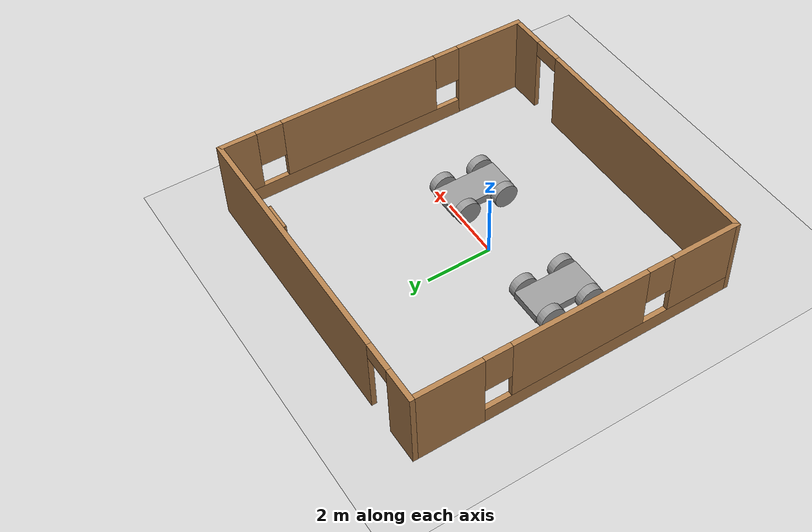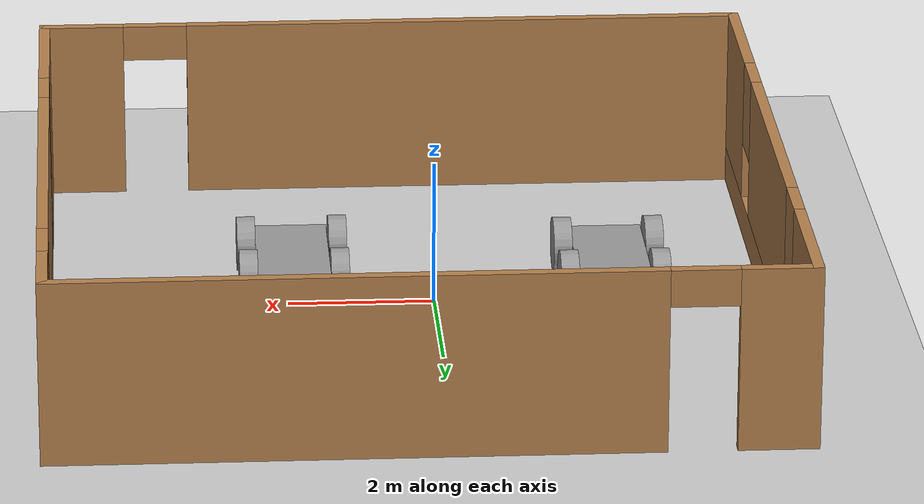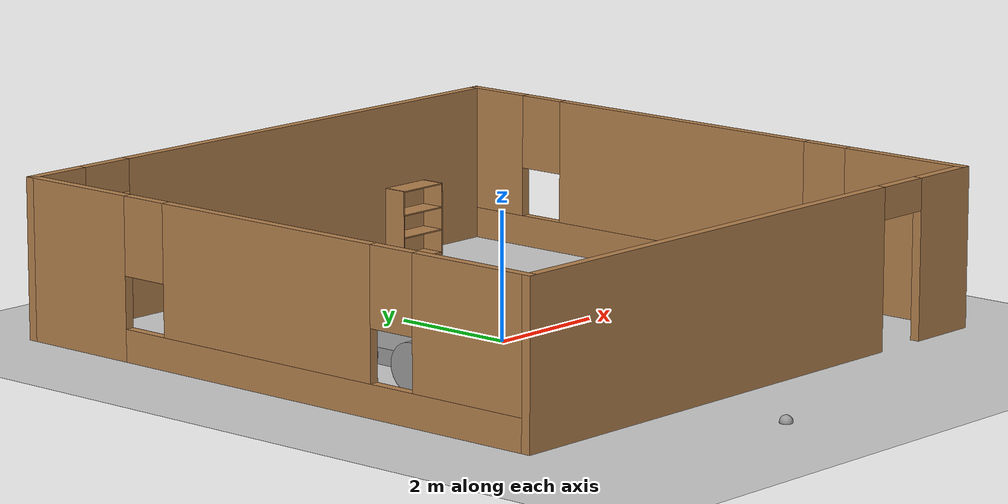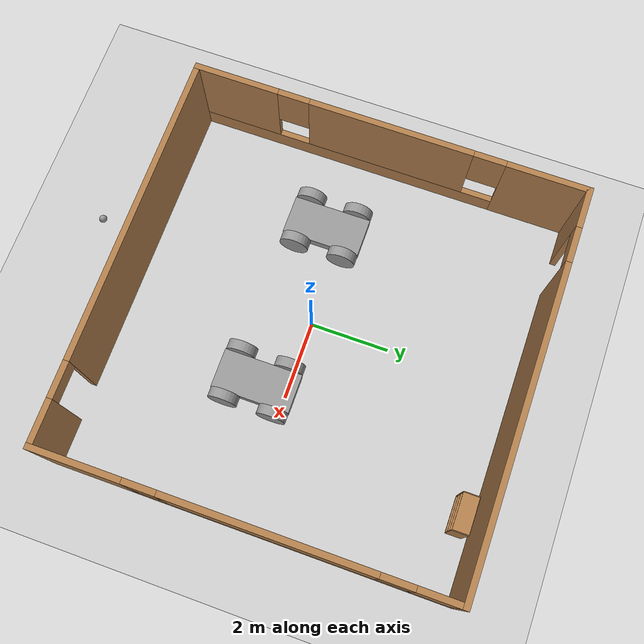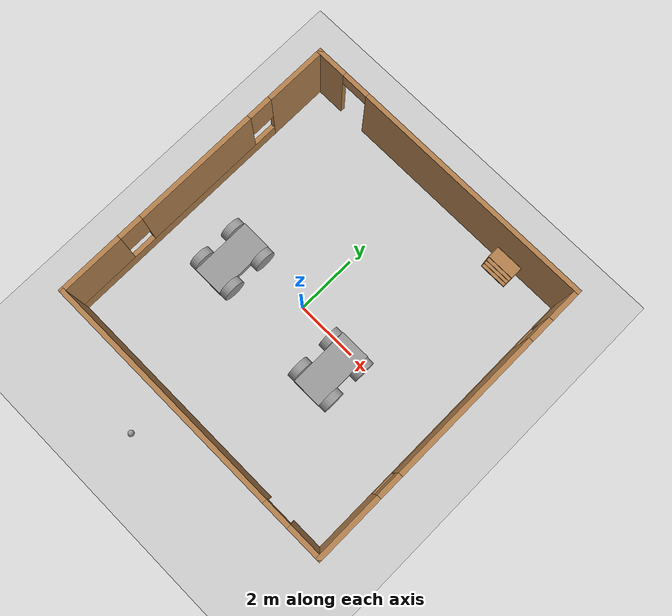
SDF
<sdf version="1.6">
 <world name="default">
  <plugin name="welcome" filename="libwelcome.so"/>
  <light name="sun" type="directional">
   <pose>0 0 10 0 -0 0</pose>
   <diffuse>0.8 0.8 0.8 1</diffuse>
   <specular>0.2 0.2 0.2 1</specular>
   <attenuation>
    <range>1000</range>
    <constant>0.9</constant>
    <linear>0.01</linear>
    <quadratic>0.001</quadratic>
   </attenuation>
   <direction>-0.5 0.1 -0.9</direction>
  </light>
  <model name="ground_plane">
   <static>1</static>
   <link name="link">
    <collision name="collision">
     <geometry><plane><normal>0 0 1</normal><size>100 100</size></plane></geometry>
     <surface>
      <contact><collide_bitmask>65535</collide_bitmask></contact>
      <friction><ode><mu>100</mu><mu2>50</mu2></ode></friction>
     </surface>
    </collision>
    <visual name="visual">
     <cast_shadows>0</cast_shadows>
     <geometry><plane><normal>0 0 1</normal><size>100 100</size></plane></geometry>
     <material>
      <script><uri>file://media/materials/scripts/gazebo.material</uri><name>Gazebo/Grey</name></script>
     </material>
    </visual>
   </link>
  </model>
  <gravity>0 0 -9.8</gravity>
  <magnetic_field>6e-06 2.3e-05 -4.2e-05</magnetic_field>
  <atmosphere type="adiabatic"/>
  <physics name="default_physics" default="0" type="ode">
   <max_step_size>0.001</max_step_size>
   <real_time_factor>1</real_time_factor>
   <real_time_update_rate>1000</real_time_update_rate>
  </physics>
  <scene><ambient>0.4 0.4 0.4 1</ambient><background>0.7 0.7 0.7 1</background><shadows>1</shadows></scene>
  <spherical_coordinates>
   <surface_model>EARTH_WGS84</surface_model>
   <latitude_deg>0</latitude_deg>
   <longitude_deg>0</longitude_deg>
   <elevation>0</elevation>
   <heading_deg>0</heading_deg>
  </spherical_coordinates>
  <model name="Kaushik_Building">
   <pose>0.360631 0.36063 0 0 -0 0</pose>
   <link name="Wall_10">
    <pose>8.6e-05 4.92509 0 0 -0 3.14159</pose>
    <visual name="Wall_10_Visual_0">
     <pose>-0.981254 0 1.25 0 -0 0</pose>
     <geometry><box><size>8.03749 0.15 2.5</size></box></geometry>
     <material>
      <script><uri>file://media/materials/scripts/gazebo.material</uri><name>Gazebo/Wood</name></script>
      <ambient>1 0.286275 0.145098 1</ambient>
     </material>
     <meta><layer>0</layer></meta>
    </visual>
    <collision name="Wall_10_Collision_0">
     <geometry><box><size>8.03749 0.15 2.5</size></box></geometry>
     <pose>-0.981254 0 1.25 0 -0 0</pose>
    </collision>
    <visual name="Wall_10_Visual_1">
     <pose>4.46875 0 1.25 0 -0 0</pose>
     <geometry><box><size>1.06251 0.15 2.5</size></box></geometry>
     <material>
      <script><uri>file://media/materials/scripts/gazebo.material</uri><name>Gazebo/Wood</name></script>
      <ambient>1 0.286275 0.145098 1</ambient>
     </material>
     <meta><layer>0</layer></meta>
    </visual>
    <collision name="Wall_10_Collision_1">
     <geometry><box><size>1.06251 0.15 2.5</size></box></geometry>
     <pose>4.46875 0 1.25 0 -0 0</pose>
    </collision>
    <visual name="Wall_10_Visual_2">
     <pose>3.48749 0 2.25 0 -0 0</pose>
     <geometry><box><size>0.9 0.15 0.5</size></box></geometry>
     <material>
      <script><uri>file://media/materials/scripts/gazebo.material</uri><name>Gazebo/Wood</name></script>
      <ambient>1 0.286275 0.145098 1</ambient>
     </material>
     <meta><layer>0</layer></meta>
    </visual>
    <collision name="Wall_10_Collision_2">
     <geometry><box><size>0.9 0.15 0.5</size></box></geometry>
     <pose>3.48749 0 2.25 0 -0 0</pose>
    </collision>
   </link>
   <link name="Wall_12">
    <pose>-4.92491 8.8e-05 0 0 0 -1.5708</pose>
    <visual name="Wall_12_Visual_0">
     <pose>-3.95142 0 1.25 0 -0 0</pose>
     <geometry><box><size>2.09715 0.15 2.5</size></box></geometry>
     <material>
      <script><uri>file://media/materials/scripts/gazebo.material</uri><name>Gazebo/Wood</name></script>
      <ambient>1 0.286275 0.145098 1</ambient>
     </material>
     <meta><layer>0</layer></meta>
    </visual>
    <collision name="Wall_12_Collision_0">
     <geometry><box><size>2.09715 0.15 2.5</size></box></geometry>
     <pose>-3.95142 0 1.25 0 -0 0</pose>
    </collision>
    <visual name="Wall_12_Visual_1">
     <pose>1.04858 0 0.25 0 -0 0</pose>
     <geometry><box><size>7.90285 0.15 0.5</size></box></geometry>
     <material>
      <script><uri>file://media/materials/scripts/gazebo.material</uri><name>Gazebo/Wood</name></script>
      <ambient>1 0.286275 0.145098 1</ambient>
     </material>
     <meta><layer>0</layer></meta>
    </visual>
    <collision name="Wall_12_Collision_1">
     <geometry><box><size>7.90285 0.15 0.5</size></box></geometry>
     <pose>1.04858 0 0.25 0 -0 0</pose>
    </collision>
    <visual name="Wall_12_Visual_2">
     <pose>-0.03675 0 1.5 0 -0 0</pose>
     <geometry><box><size>4.1322 0.15 2</size></box></geometry>
     <material>
      <script><uri>file://media/materials/scripts/gazebo.material</uri><name>Gazebo/Wood</name></script>
      <ambient>1 0.286275 0.145098 1</ambient>
     </material>
     <meta><layer>0</layer></meta>
    </visual>
    <collision name="Wall_12_Collision_2">
     <geometry><box><size>4.1322 0.15 2</size></box></geometry>
     <pose>-0.03675 0 1.5 0 -0 0</pose>
    </collision>
    <visual name="Wall_12_Visual_3">
     <pose>3.91467 0 1.5 0 -0 0</pose>
     <geometry><box><size>2.17065 0.15 2</size></box></geometry>
     <material>
      <script><uri>file://media/materials/scripts/gazebo.material</uri><name>Gazebo/Wood</name></script>
      <ambient>1 0.286275 0.145098 1</ambient>
     </material>
     <meta><layer>0</layer></meta>
    </visual>
    <collision name="Wall_12_Collision_3">
     <geometry><box><size>2.17065 0.15 2</size></box></geometry>
     <pose>3.91467 0 1.5 0 -0 0</pose>
    </collision>
    <visual name="Wall_12_Visual_4">
     <pose>-2.50285 0 1.9 0 -0 0</pose>
     <geometry><box><size>0.8 0.15 1.2</size></box></geometry>
     <material>
      <script><uri>file://media/materials/scripts/gazebo.material</uri><name>Gazebo/Wood</name></script>
      <ambient>1 0.286275 0.145098 1</ambient>
     </material>
     <meta><layer>0</layer></meta>
    </visual>
    <collision name="Wall_12_Collision_4">
     <geometry><box><size>0.8 0.15 1.2</size></box></geometry>
     <pose>-2.50285 0 1.9 0 -0 0</pose>
    </collision>
    <visual name="Wall_12_Visual_5">
     <pose>2.42935 0 1.9 0 -0 0</pose>
     <geometry><box><size>0.8 0.15 1.2</size></box></geometry>
     <material>
      <script><uri>file://media/materials/scripts/gazebo.material</uri><name>Gazebo/Wood</name></script>
      <ambient>1 0.286275 0.145098 1</ambient>
     </material>
     <meta><layer>0</layer></meta>
    </visual>
    <collision name="Wall_12_Collision_5">
     <geometry><box><size>0.8 0.15 1.2</size></box></geometry>
     <pose>2.42935 0 1.9 0 -0 0</pose>
    </collision>
   </link>
   <link name="Wall_3">
    <pose>-8.6e-05 -4.92509 0 0 -0 0</pose>
    <visual name="Wall_3_Visual_0">
     <pose>-1.04603 0 1.25 0 -0 0</pose>
     <geometry><box><size>7.90794 0.15 2.5</size></box></geometry>
     <material>
      <script><uri>file://media/materials/scripts/gazebo.material</uri><name>Gazebo/Wood</name></script>
      <ambient>1 0.286275 0.145098 1</ambient>
     </material>
     <meta><layer>0</layer></meta>
    </visual>
    <collision name="Wall_3_Collision_0">
     <geometry><box><size>7.90794 0.15 2.5</size></box></geometry>
     <pose>-1.04603 0 1.25 0 -0 0</pose>
    </collision>
    <visual name="Wall_3_Visual_1">
     <pose>4.40397 0 1.25 0 -0 0</pose>
     <geometry><box><size>1.19206 0.15 2.5</size></box></geometry>
     <material>
      <script><uri>file://media/materials/scripts/gazebo.material</uri><name>Gazebo/Wood</name></script>
      <ambient>1 0.286275 0.145098 1</ambient>
     </material>
     <meta><layer>0</layer></meta>
    </visual>
    <collision name="Wall_3_Collision_1">
     <geometry><box><size>1.19206 0.15 2.5</size></box></geometry>
     <pose>4.40397 0 1.25 0 -0 0</pose>
    </collision>
    <visual name="Wall_3_Visual_2">
     <pose>3.35793 0 2.25 0 -0 0</pose>
     <geometry><box><size>0.9 0.15 0.5</size></box></geometry>
     <material>
      <script><uri>file://media/materials/scripts/gazebo.material</uri><name>Gazebo/Wood</name></script>
      <ambient>1 0.286275 0.145098 1</ambient>
     </material>
     <meta><layer>0</layer></meta>
    </visual>
    <collision name="Wall_3_Collision_2">
     <geometry><box><size>0.9 0.15 0.5</size></box></geometry>
     <pose>3.35793 0 2.25 0 -0 0</pose>
    </collision>
   </link>
   <link name="Wall_8">
    <pose>4.925 0 0 0 -0 1.57078</pose>
    <visual name="Wall_8_Visual_0">
     <pose>-3.87972 0 1.25 0 -0 0</pose>
     <geometry><box><size>2.24057 0.15 2.5</size></box></geometry>
     <material>
      <script><uri>file://media/materials/scripts/gazebo.material</uri><name>Gazebo/Wood</name></script>
      <ambient>1 0.286275 0.145098 1</ambient>
     </material>
     <meta><layer>0</layer></meta>
    </visual>
    <collision name="Wall_8_Collision_0">
     <geometry><box><size>2.24057 0.15 2.5</size></box></geometry>
     <pose>-3.87972 0 1.25 0 -0 0</pose>
    </collision>
    <visual name="Wall_8_Visual_1">
     <pose>1.12028 0 0.25 0 -0 0</pose>
     <geometry><box><size>7.75943 0.15 0.5</size></box></geometry>
     <material>
      <script><uri>file://media/materials/scripts/gazebo.material</uri><name>Gazebo/Wood</name></script>
      <ambient>1 0.286275 0.145098 1</ambient>
     </material>
     <meta><layer>0</layer></meta>
    </visual>
    <collision name="Wall_8_Collision_1">
     <geometry><box><size>7.75943 0.15 0.5</size></box></geometry>
     <pose>1.12028 0 0.25 0 -0 0</pose>
    </collision>
    <visual name="Wall_8_Visual_2">
     <pose>0.543972 0 1.5 0 -0 0</pose>
     <geometry><box><size>5.0068 0.15 2</size></box></geometry>
     <material>
      <script><uri>file://media/materials/scripts/gazebo.material</uri><name>Gazebo/Wood</name></script>
      <ambient>1 0.286275 0.145098 1</ambient>
     </material>
     <meta><layer>0</layer></meta>
    </visual>
    <collision name="Wall_8_Collision_2">
     <geometry><box><size>5.0068 0.15 2</size></box></geometry>
     <pose>0.543972 0 1.5 0 -0 0</pose>
    </collision>
    <visual name="Wall_8_Visual_3">
     <pose>4.42369 0 1.5 0 -0 0</pose>
     <geometry><box><size>1.15263 0.15 2</size></box></geometry>
     <material>
      <script><uri>file://media/materials/scripts/gazebo.material</uri><name>Gazebo/Wood</name></script>
      <ambient>1 0.286275 0.145098 1</ambient>
     </material>
     <meta><layer>0</layer></meta>
    </visual>
    <collision name="Wall_8_Collision_3">
     <geometry><box><size>1.15263 0.15 2</size></box></geometry>
     <pose>4.42369 0 1.5 0 -0 0</pose>
    </collision>
    <visual name="Wall_8_Visual_4">
     <pose>-2.35943 0 1.9 0 -0 0</pose>
     <geometry><box><size>0.8 0.15 1.2</size></box></geometry>
     <material>
      <script><uri>file://media/materials/scripts/gazebo.material</uri><name>Gazebo/Wood</name></script>
      <ambient>1 0.286275 0.145098 1</ambient>
     </material>
     <meta><layer>0</layer></meta>
    </visual>
    <collision name="Wall_8_Collision_4">
     <geometry><box><size>0.8 0.15 1.2</size></box></geometry>
     <pose>-2.35943 0 1.9 0 -0 0</pose>
    </collision>
    <visual name="Wall_8_Visual_5">
     <pose>3.44737 0 1.9 0 -0 0</pose>
     <geometry><box><size>0.8 0.15 1.2</size></box></geometry>
     <material>
      <script><uri>file://media/materials/scripts/gazebo.material</uri><name>Gazebo/Wood</name></script>
      <ambient>1 0.286275 0.145098 1</ambient>
     </material>
     <meta><layer>0</layer></meta>
    </visual>
    <collision name="Wall_8_Collision_5">
     <geometry><box><size>0.8 0.15 1.2</size></box></geometry>
     <pose>3.44737 0 1.9 0 -0 0</pose>
    </collision>
   </link>
   <static>1</static>
  </model>
  <model name="Kaushik_Model">
   <link name="link_1">
    <pose>0.003 0 -0.006 0 -0 0</pose>
    <inertial>
     <mass>1</mass>
     <inertia>
      <ixx>0.166667</ixx>
      <ixy>0</ixy>
      <ixz>0</ixz>
      <iyy>0.166667</iyy>
      <iyz>0</iyz>
      <izz>0.166667</izz>
     </inertia>
    </inertial>
    <visual name="visual">
     <geometry><box><size>1 2 0.25</size></box></geometry>
     <material>
      <lighting>1</lighting>
      <script><uri>file://media/materials/scripts/gazebo.material</uri><name>Gazebo/Grey</name></script>
      <shader type="pixel"><normal_map>__default__</normal_map></shader>
      <ambient>0.3 0.3 0.3 1</ambient>
      <diffuse>0.7 0.7 0.7 1</diffuse>
      <specular>0.01 0.01 0.01 1</specular>
      <emissive>0 0 0 1</emissive>
     </material>
    </visual>
    <collision name="collision">
     <geometry><box><size>1 2 0.25</size></box></geometry>
     <surface>
      <friction>
       <ode><mu>1</mu><mu2>1</mu2><fdir1>0 0 0</fdir1><slip1>0</slip1><slip2>0</slip2></ode>
       <torsional>
        <coefficient>1</coefficient>
        <patch_radius>0</patch_radius>
        <surface_radius>0</surface_radius>
        <use_patch_radius>1</use_patch_radius>
        <ode><slip>0</slip></ode>
       </torsional>
      </friction>
      <bounce><restitution_coefficient>0</restitution_coefficient><threshold>1e+06</threshold></bounce>
      <contact>
       <collide_without_contact>0</collide_without_contact>
       <collide_without_contact_bitmask>1</collide_without_contact_bitmask>
       <collide_bitmask>1</collide_bitmask>
       <ode>
        <soft_cfm>0</soft_cfm>
        <soft_erp>0.2</soft_erp>
        <kp>1e+13</kp>
        <kd>1</kd>
        <max_vel>0.01</max_vel>
        <min_depth>0</min_depth>
       </ode>
       <bullet>
        <split_impulse>1</split_impulse>
        <split_impulse_penetration_threshold>-0.01</split_impulse_penetration_threshold>
        <soft_cfm>0</soft_cfm>
        <soft_erp>0.2</soft_erp>
        <kp>1e+13</kp>
        <kd>1</kd>
       </bullet>
      </contact>
     </surface>
    </collision>
   </link>
   <link name="link_3">
    <pose>-0.637002 -0.625 0.0015 0 1.57079 0</pose>
    <inertial>
     <mass>1</mass>
     <inertia><ixx>0.145833</ixx><ixy>0</ixy><ixz>0</ixz><iyy>0.145833</iyy><iyz>0</iyz><izz>0.125</izz></inertia>
    </inertial>
    <visual name="visual">
     <geometry><cylinder><radius>0.375</radius><length>0.25</length></cylinder></geometry>
     <material>
      <lighting>1</lighting>
      <script><uri>file://media/materials/scripts/gazebo.material</uri><name>Gazebo/Grey</name></script>
      <shader type="pixel"><normal_map>__default__</normal_map></shader>
      <ambient>0.3 0.3 0.3 1</ambient>
      <diffuse>0.7 0.7 0.7 1</diffuse>
      <specular>0.01 0.01 0.01 1</specular>
      <emissive>0 0 0 1</emissive>
     </material>
    </visual>
    <collision name="collision">
     <geometry><cylinder><radius>0.375</radius><length>0.25</length></cylinder></geometry>
     <surface>
      <friction>
       <ode><mu>1</mu><mu2>1</mu2><fdir1>0 0 0</fdir1><slip1>0</slip1><slip2>0</slip2></ode>
       <torsional>
        <coefficient>1</coefficient>
        <patch_radius>0</patch_radius>
        <surface_radius>0</surface_radius>
        <use_patch_radius>1</use_patch_radius>
        <ode><slip>0</slip></ode>
       </torsional>
      </friction>
      <bounce><restitution_coefficient>0</restitution_coefficient><threshold>1e+06</threshold></bounce>
      <contact>
       <collide_without_contact>0</collide_without_contact>
       <collide_without_contact_bitmask>1</collide_without_contact_bitmask>
       <collide_bitmask>1</collide_bitmask>
       <ode>
        <soft_cfm>0</soft_cfm>
        <soft_erp>0.2</soft_erp>
        <kp>1e+13</kp>
        <kd>1</kd>
        <max_vel>0.01</max_vel>
        <min_depth>0</min_depth>
       </ode>
       <bullet>
        <split_impulse>1</split_impulse>
        <split_impulse_penetration_threshold>-0.01</split_impulse_penetration_threshold>
        <soft_cfm>0</soft_cfm>
        <soft_erp>0.2</soft_erp>
        <kp>1e+13</kp>
        <kd>1</kd>
       </bullet>
      </contact>
     </surface>
    </collision>
   </link>
   <link name="link_3_clone">
    <pose>0.628002 0.625 0.0015 0 1.57079 0</pose>
    <inertial>
     <mass>1</mass>
     <inertia><ixx>0.145833</ixx><ixy>0</ixy><ixz>0</ixz><iyy>0.145833</iyy><iyz>0</iyz><izz>0.125</izz></inertia>
    </inertial>
    <visual name="visual">
     <geometry><cylinder><radius>0.375</radius><length>0.25</length></cylinder></geometry>
     <material>
      <lighting>1</lighting>
      <script><uri>file://media/materials/scripts/gazebo.material</uri><name>Gazebo/Grey</name></script>
      <shader type="pixel"><normal_map>__default__</normal_map></shader>
      <ambient>0.3 0.3 0.3 1</ambient>
      <diffuse>0.7 0.7 0.7 1</diffuse>
      <specular>0.01 0.01 0.01 1</specular>
      <emissive>0 0 0 1</emissive>
     </material>
    </visual>
    <collision name="collision">
     <geometry><cylinder><radius>0.375</radius><length>0.25</length></cylinder></geometry>
     <surface>
      <friction>
       <ode><mu>1</mu><mu2>1</mu2><fdir1>0 0 0</fdir1><slip1>0</slip1><slip2>0</slip2></ode>
       <torsional>
        <coefficient>1</coefficient>
        <patch_radius>0</patch_radius>
        <surface_radius>0</surface_radius>
        <use_patch_radius>1</use_patch_radius>
        <ode><slip>0</slip></ode>
       </torsional>
      </friction>
      <bounce><restitution_coefficient>0</restitution_coefficient><threshold>1e+06</threshold></bounce>
      <contact>
       <collide_without_contact>0</collide_without_contact>
       <collide_without_contact_bitmask>1</collide_without_contact_bitmask>
       <collide_bitmask>1</collide_bitmask>
       <ode>
        <soft_cfm>0</soft_cfm>
        <soft_erp>0.2</soft_erp>
        <kp>1e+13</kp>
        <kd>1</kd>
        <max_vel>0.01</max_vel>
        <min_depth>0</min_depth>
       </ode>
       <bullet>
        <split_impulse>1</split_impulse>
        <split_impulse_penetration_threshold>-0.01</split_impulse_penetration_threshold>
        <soft_cfm>0</soft_cfm>
        <soft_erp>0.2</soft_erp>
        <kp>1e+13</kp>
        <kd>1</kd>
       </bullet>
      </contact>
     </surface>
    </collision>
   </link>
   <link name="link_3_clone_0">
    <pose>-0.622002 0.625 0.0015 0 1.57079 0</pose>
    <inertial>
     <mass>1</mass>
     <inertia><ixx>0.145833</ixx><ixy>0</ixy><ixz>0</ixz><iyy>0.145833</iyy><iyz>0</iyz><izz>0.125</izz></inertia>
    </inertial>
    <visual name="visual">
     <geometry><cylinder><radius>0.375</radius><length>0.25</length></cylinder></geometry>
     <material>
      <lighting>1</lighting>
      <script><uri>file://media/materials/scripts/gazebo.material</uri><name>Gazebo/Grey</name></script>
      <shader type="pixel"><normal_map>__default__</normal_map></shader>
      <ambient>0.3 0.3 0.3 1</ambient>
      <diffuse>0.7 0.7 0.7 1</diffuse>
      <specular>0.01 0.01 0.01 1</specular>
      <emissive>0 0 0 1</emissive>
     </material>
    </visual>
    <collision name="collision">
     <geometry><cylinder><radius>0.375</radius><length>0.25</length></cylinder></geometry>
     <surface>
      <friction>
       <ode><mu>1</mu><mu2>1</mu2><fdir1>0 0 0</fdir1><slip1>0</slip1><slip2>0</slip2></ode>
       <torsional>
        <coefficient>1</coefficient>
        <patch_radius>0</patch_radius>
        <surface_radius>0</surface_radius>
        <use_patch_radius>1</use_patch_radius>
        <ode><slip>0</slip></ode>
       </torsional>
      </friction>
      <bounce><restitution_coefficient>0</restitution_coefficient><threshold>1e+06</threshold></bounce>
      <contact>
       <collide_without_contact>0</collide_without_contact>
       <collide_without_contact_bitmask>1</collide_without_contact_bitmask>
       <collide_bitmask>1</collide_bitmask>
       <ode>
        <soft_cfm>0</soft_cfm>
        <soft_erp>0.2</soft_erp>
        <kp>1e+13</kp>
        <kd>1</kd>
        <max_vel>0.01</max_vel>
        <min_depth>0</min_depth>
       </ode>
       <bullet>
        <split_impulse>1</split_impulse>
        <split_impulse_penetration_threshold>-0.01</split_impulse_penetration_threshold>
        <soft_cfm>0</soft_cfm>
        <soft_erp>0.2</soft_erp>
        <kp>1e+13</kp>
        <kd>1</kd>
       </bullet>
      </contact>
     </surface>
    </collision>
   </link>
   <link name="link_3_clone_1">
    <pose>0.628002 -0.625 0.0015 0 1.57079 0</pose>
    <inertial>
     <mass>1</mass>
     <inertia><ixx>0.145833</ixx><ixy>0</ixy><ixz>0</ixz><iyy>0.145833</iyy><iyz>0</iyz><izz>0.125</izz></inertia>
    </inertial>
    <visual name="visual">
     <geometry><cylinder><radius>0.375</radius><length>0.25</length></cylinder></geometry>
     <material>
      <lighting>1</lighting>
      <script><uri>file://media/materials/scripts/gazebo.material</uri><name>Gazebo/Grey</name></script>
      <shader type="pixel"><normal_map>__default__</normal_map></shader>
      <ambient>0.3 0.3 0.3 1</ambient>
      <diffuse>0.7 0.7 0.7 1</diffuse>
      <specular>0.01 0.01 0.01 1</specular>
      <emissive>0 0 0 1</emissive>
     </material>
    </visual>
    <collision name="collision">
     <geometry><cylinder><radius>0.375</radius><length>0.25</length></cylinder></geometry>
     <surface>
      <friction>
       <ode><mu>1</mu><mu2>1</mu2><fdir1>0 0 0</fdir1><slip1>0</slip1><slip2>0</slip2></ode>
       <torsional>
        <coefficient>1</coefficient>
        <patch_radius>0</patch_radius>
        <surface_radius>0</surface_radius>
        <use_patch_radius>1</use_patch_radius>
        <ode><slip>0</slip></ode>
       </torsional>
      </friction>
      <bounce><restitution_coefficient>0</restitution_coefficient><threshold>1e+06</threshold></bounce>
      <contact>
       <collide_without_contact>0</collide_without_contact>
       <collide_without_contact_bitmask>1</collide_without_contact_bitmask>
       <collide_bitmask>1</collide_bitmask>
       <ode>
        <soft_cfm>0</soft_cfm>
        <soft_erp>0.2</soft_erp>
        <kp>1e+13</kp>
        <kd>1</kd>
        <max_vel>0.01</max_vel>
        <min_depth>0</min_depth>
       </ode>
       <bullet>
        <split_impulse>1</split_impulse>
        <split_impulse_penetration_threshold>-0.01</split_impulse_penetration_threshold>
        <soft_cfm>0</soft_cfm>
        <soft_erp>0.2</soft_erp>
        <kp>1e+13</kp>
        <kd>1</kd>
       </bullet>
      </contact>
     </surface>
    </collision>
   </link>
   <joint name="link_1_JOINT_10" type="revolute">
    <parent>link_1</parent>
    <child>link_3_clone_1</child>
    <axis>
     <xyz>0 0 1</xyz>
     <use_parent_model_frame>0</use_parent_model_frame>
     <limit>
      <lower>-1.79769e+308</lower>
      <upper>1.79769e+308</upper>
      <effort>-1</effort>
      <velocity>-1</velocity>
     </limit>
     <dynamics>
      <spring_reference>0</spring_reference>
      <spring_stiffness>0</spring_stiffness>
      <damping>0</damping>
     </dynamics>
    </axis>
    <physics>
     <ode><limit><cfm>0</cfm><erp>0.2</erp></limit><suspension><cfm>0</cfm><erp>0.2</erp></suspension></ode>
    </physics>
   </joint>
   <joint name="link_1_JOINT_11" type="revolute">
    <parent>link_1</parent>
    <child>link_3_clone_0</child>
    <axis>
     <xyz>0 0 -1</xyz>
     <use_parent_model_frame>0</use_parent_model_frame>
     <limit>
      <lower>-1.79769e+308</lower>
      <upper>1.79769e+308</upper>
      <effort>-1</effort>
      <velocity>-1</velocity>
     </limit>
     <dynamics>
      <spring_reference>0</spring_reference>
      <spring_stiffness>0</spring_stiffness>
      <damping>0</damping>
     </dynamics>
    </axis>
    <physics>
     <ode><limit><cfm>0</cfm><erp>0.2</erp></limit><suspension><cfm>0</cfm><erp>0.2</erp></suspension></ode>
    </physics>
   </joint>
   <joint name="link_1_JOINT_8" type="revolute">
    <parent>link_1</parent>
    <child>link_3</child>
    <axis>
     <xyz>0 0 -1</xyz>
     <use_parent_model_frame>0</use_parent_model_frame>
     <limit>
      <lower>-1.79769e+308</lower>
      <upper>1.79769e+308</upper>
      <effort>-1</effort>
      <velocity>-1</velocity>
     </limit>
     <dynamics>
      <spring_reference>0</spring_reference>
      <spring_stiffness>0</spring_stiffness>
      <damping>0</damping>
     </dynamics>
    </axis>
    <physics>
     <ode><limit><cfm>0</cfm><erp>0.2</erp></limit><suspension><cfm>0</cfm><erp>0.2</erp></suspension></ode>
    </physics>
   </joint>
   <joint name="link_1_JOINT_9" type="revolute">
    <parent>link_1</parent>
    <child>link_3_clone</child>
    <axis>
     <xyz>0 0 1</xyz>
     <use_parent_model_frame>0</use_parent_model_frame>
     <limit>
      <lower>-1.79769e+308</lower>
      <upper>1.79769e+308</upper>
      <effort>-1</effort>
      <velocity>-1</velocity>
     </limit>
     <dynamics>
      <spring_reference>0</spring_reference>
      <spring_stiffness>0</spring_stiffness>
      <damping>0</damping>
     </dynamics>
    </axis>
    <physics>
     <ode><limit><cfm>0</cfm><erp>0.2</erp></limit><suspension><cfm>0</cfm><erp>0.2</erp></suspension></ode>
    </physics>
   </joint>
   <static>0</static>
   <pose>-2.45939 -0.479877 0.373498 0 3e-06 -4.8e-05</pose>
  </model>
  <model name="Kaushik_Model_0">
   <link name="link_1">
    <pose>0.003 0 -0.006 0 -0 0</pose>
    <inertial>
     <mass>1</mass>
     <inertia>
      <ixx>0.166667</ixx>
      <ixy>0</ixy>
      <ixz>0</ixz>
      <iyy>0.166667</iyy>
      <iyz>0</iyz>
      <izz>0.166667</izz>
     </inertia>
    </inertial>
    <visual name="visual">
     <geometry><box><size>1 2 0.25</size></box></geometry>
     <material>
      <lighting>1</lighting>
      <script><uri>file://media/materials/scripts/gazebo.material</uri><name>Gazebo/Grey</name></script>
      <shader type="pixel"><normal_map>__default__</normal_map></shader>
      <ambient>0.3 0.3 0.3 1</ambient>
      <diffuse>0.7 0.7 0.7 1</diffuse>
      <specular>0.01 0.01 0.01 1</specular>
      <emissive>0 0 0 1</emissive>
     </material>
    </visual>
    <collision name="collision">
     <geometry><box><size>1 2 0.25</size></box></geometry>
     <surface>
      <friction>
       <ode><mu>1</mu><mu2>1</mu2><fdir1>0 0 0</fdir1><slip1>0</slip1><slip2>0</slip2></ode>
       <torsional>
        <coefficient>1</coefficient>
        <patch_radius>0</patch_radius>
        <surface_radius>0</surface_radius>
        <use_patch_radius>1</use_patch_radius>
        <ode><slip>0</slip></ode>
       </torsional>
      </friction>
      <bounce><restitution_coefficient>0</restitution_coefficient><threshold>1e+06</threshold></bounce>
      <contact>
       <collide_without_contact>0</collide_without_contact>
       <collide_without_contact_bitmask>1</collide_without_contact_bitmask>
       <collide_bitmask>1</collide_bitmask>
       <ode>
        <soft_cfm>0</soft_cfm>
        <soft_erp>0.2</soft_erp>
        <kp>1e+13</kp>
        <kd>1</kd>
        <max_vel>0.01</max_vel>
        <min_depth>0</min_depth>
       </ode>
       <bullet>
        <split_impulse>1</split_impulse>
        <split_impulse_penetration_threshold>-0.01</split_impulse_penetration_threshold>
        <soft_cfm>0</soft_cfm>
        <soft_erp>0.2</soft_erp>
        <kp>1e+13</kp>
        <kd>1</kd>
       </bullet>
      </contact>
     </surface>
    </collision>
   </link>
   <link name="link_3">
    <pose>-0.637002 -0.625 0.0015 0 1.57079 0</pose>
    <inertial>
     <mass>1</mass>
     <inertia><ixx>0.145833</ixx><ixy>0</ixy><ixz>0</ixz><iyy>0.145833</iyy><iyz>0</iyz><izz>0.125</izz></inertia>
    </inertial>
    <visual name="visual">
     <geometry><cylinder><radius>0.375</radius><length>0.25</length></cylinder></geometry>
     <material>
      <lighting>1</lighting>
      <script><uri>file://media/materials/scripts/gazebo.material</uri><name>Gazebo/Grey</name></script>
      <shader type="pixel"><normal_map>__default__</normal_map></shader>
      <ambient>0.3 0.3 0.3 1</ambient>
      <diffuse>0.7 0.7 0.7 1</diffuse>
      <specular>0.01 0.01 0.01 1</specular>
      <emissive>0 0 0 1</emissive>
     </material>
    </visual>
    <collision name="collision">
     <geometry><cylinder><radius>0.375</radius><length>0.25</length></cylinder></geometry>
     <surface>
      <friction>
       <ode><mu>1</mu><mu2>1</mu2><fdir1>0 0 0</fdir1><slip1>0</slip1><slip2>0</slip2></ode>
       <torsional>
        <coefficient>1</coefficient>
        <patch_radius>0</patch_radius>
        <surface_radius>0</surface_radius>
        <use_patch_radius>1</use_patch_radius>
        <ode><slip>0</slip></ode>
       </torsional>
      </friction>
      <bounce><restitution_coefficient>0</restitution_coefficient><threshold>1e+06</threshold></bounce>
      <contact>
       <collide_without_contact>0</collide_without_contact>
       <collide_without_contact_bitmask>1</collide_without_contact_bitmask>
       <collide_bitmask>1</collide_bitmask>
       <ode>
        <soft_cfm>0</soft_cfm>
        <soft_erp>0.2</soft_erp>
        <kp>1e+13</kp>
        <kd>1</kd>
        <max_vel>0.01</max_vel>
        <min_depth>0</min_depth>
       </ode>
       <bullet>
        <split_impulse>1</split_impulse>
        <split_impulse_penetration_threshold>-0.01</split_impulse_penetration_threshold>
        <soft_cfm>0</soft_cfm>
        <soft_erp>0.2</soft_erp>
        <kp>1e+13</kp>
        <kd>1</kd>
       </bullet>
      </contact>
     </surface>
    </collision>
   </link>
   <link name="link_3_clone">
    <pose>0.628002 0.625 0.0015 0 1.57079 0</pose>
    <inertial>
     <mass>1</mass>
     <inertia><ixx>0.145833</ixx><ixy>0</ixy><ixz>0</ixz><iyy>0.145833</iyy><iyz>0</iyz><izz>0.125</izz></inertia>
    </inertial>
    <visual name="visual">
     <geometry><cylinder><radius>0.375</radius><length>0.25</length></cylinder></geometry>
     <material>
      <lighting>1</lighting>
      <script><uri>file://media/materials/scripts/gazebo.material</uri><name>Gazebo/Grey</name></script>
      <shader type="pixel"><normal_map>__default__</normal_map></shader>
      <ambient>0.3 0.3 0.3 1</ambient>
      <diffuse>0.7 0.7 0.7 1</diffuse>
      <specular>0.01 0.01 0.01 1</specular>
      <emissive>0 0 0 1</emissive>
     </material>
    </visual>
    <collision name="collision">
     <geometry><cylinder><radius>0.375</radius><length>0.25</length></cylinder></geometry>
     <surface>
      <friction>
       <ode><mu>1</mu><mu2>1</mu2><fdir1>0 0 0</fdir1><slip1>0</slip1><slip2>0</slip2></ode>
       <torsional>
        <coefficient>1</coefficient>
        <patch_radius>0</patch_radius>
        <surface_radius>0</surface_radius>
        <use_patch_radius>1</use_patch_radius>
        <ode><slip>0</slip></ode>
       </torsional>
      </friction>
      <bounce><restitution_coefficient>0</restitution_coefficient><threshold>1e+06</threshold></bounce>
      <contact>
       <collide_without_contact>0</collide_without_contact>
       <collide_without_contact_bitmask>1</collide_without_contact_bitmask>
       <collide_bitmask>1</collide_bitmask>
       <ode>
        <soft_cfm>0</soft_cfm>
        <soft_erp>0.2</soft_erp>
        <kp>1e+13</kp>
        <kd>1</kd>
        <max_vel>0.01</max_vel>
        <min_depth>0</min_depth>
       </ode>
       <bullet>
        <split_impulse>1</split_impulse>
        <split_impulse_penetration_threshold>-0.01</split_impulse_penetration_threshold>
        <soft_cfm>0</soft_cfm>
        <soft_erp>0.2</soft_erp>
        <kp>1e+13</kp>
        <kd>1</kd>
       </bullet>
      </contact>
     </surface>
    </collision>
   </link>
   <link name="link_3_clone_0">
    <pose>-0.622002 0.625 0.0015 0 1.57079 0</pose>
    <inertial>
     <mass>1</mass>
     <inertia><ixx>0.145833</ixx><ixy>0</ixy><ixz>0</ixz><iyy>0.145833</iyy><iyz>0</iyz><izz>0.125</izz></inertia>
    </inertial>
    <visual name="visual">
     <geometry><cylinder><radius>0.375</radius><length>0.25</length></cylinder></geometry>
     <material>
      <lighting>1</lighting>
      <script><uri>file://media/materials/scripts/gazebo.material</uri><name>Gazebo/Grey</name></script>
      <shader type="pixel"><normal_map>__default__</normal_map></shader>
      <ambient>0.3 0.3 0.3 1</ambient>
      <diffuse>0.7 0.7 0.7 1</diffuse>
      <specular>0.01 0.01 0.01 1</specular>
      <emissive>0 0 0 1</emissive>
     </material>
    </visual>
    <collision name="collision">
     <geometry><cylinder><radius>0.375</radius><length>0.25</length></cylinder></geometry>
     <surface>
      <friction>
       <ode><mu>1</mu><mu2>1</mu2><fdir1>0 0 0</fdir1><slip1>0</slip1><slip2>0</slip2></ode>
       <torsional>
        <coefficient>1</coefficient>
        <patch_radius>0</patch_radius>
        <surface_radius>0</surface_radius>
        <use_patch_radius>1</use_patch_radius>
        <ode><slip>0</slip></ode>
       </torsional>
      </friction>
      <bounce><restitution_coefficient>0</restitution_coefficient><threshold>1e+06</threshold></bounce>
      <contact>
       <collide_without_contact>0</collide_without_contact>
       <collide_without_contact_bitmask>1</collide_without_contact_bitmask>
       <collide_bitmask>1</collide_bitmask>
       <ode>
        <soft_cfm>0</soft_cfm>
        <soft_erp>0.2</soft_erp>
        <kp>1e+13</kp>
        <kd>1</kd>
        <max_vel>0.01</max_vel>
        <min_depth>0</min_depth>
       </ode>
       <bullet>
        <split_impulse>1</split_impulse>
        <split_impulse_penetration_threshold>-0.01</split_impulse_penetration_threshold>
        <soft_cfm>0</soft_cfm>
        <soft_erp>0.2</soft_erp>
        <kp>1e+13</kp>
        <kd>1</kd>
       </bullet>
      </contact>
     </surface>
    </collision>
   </link>
   <link name="link_3_clone_1">
    <pose>0.628002 -0.625 0.0015 0 1.57079 0</pose>
    <inertial>
     <mass>1</mass>
     <inertia><ixx>0.145833</ixx><ixy>0</ixy><ixz>0</ixz><iyy>0.145833</iyy><iyz>0</iyz><izz>0.125</izz></inertia>
    </inertial>
    <visual name="visual">
     <geometry><cylinder><radius>0.375</radius><length>0.25</length></cylinder></geometry>
     <material>
      <lighting>1</lighting>
      <script><uri>file://media/materials/scripts/gazebo.material</uri><name>Gazebo/Grey</name></script>
      <shader type="pixel"><normal_map>__default__</normal_map></shader>
      <ambient>0.3 0.3 0.3 1</ambient>
      <diffuse>0.7 0.7 0.7 1</diffuse>
      <specular>0.01 0.01 0.01 1</specular>
      <emissive>0 0 0 1</emissive>
     </material>
    </visual>
    <collision name="collision">
     <geometry><cylinder><radius>0.375</radius><length>0.25</length></cylinder></geometry>
     <surface>
      <friction>
       <ode><mu>1</mu><mu2>1</mu2><fdir1>0 0 0</fdir1><slip1>0</slip1><slip2>0</slip2></ode>
       <torsional>
        <coefficient>1</coefficient>
        <patch_radius>0</patch_radius>
        <surface_radius>0</surface_radius>
        <use_patch_radius>1</use_patch_radius>
        <ode><slip>0</slip></ode>
       </torsional>
      </friction>
      <bounce><restitution_coefficient>0</restitution_coefficient><threshold>1e+06</threshold></bounce>
      <contact>
       <collide_without_contact>0</collide_without_contact>
       <collide_without_contact_bitmask>1</collide_without_contact_bitmask>
       <collide_bitmask>1</collide_bitmask>
       <ode>
        <soft_cfm>0</soft_cfm>
        <soft_erp>0.2</soft_erp>
        <kp>1e+13</kp>
        <kd>1</kd>
        <max_vel>0.01</max_vel>
        <min_depth>0</min_depth>
       </ode>
       <bullet>
        <split_impulse>1</split_impulse>
        <split_impulse_penetration_threshold>-0.01</split_impulse_penetration_threshold>
        <soft_cfm>0</soft_cfm>
        <soft_erp>0.2</soft_erp>
        <kp>1e+13</kp>
        <kd>1</kd>
       </bullet>
      </contact>
     </surface>
    </collision>
   </link>
   <joint name="link_1_JOINT_10" type="revolute">
    <parent>link_1</parent>
    <child>link_3_clone_1</child>
    <axis>
     <xyz>0 0 1</xyz>
     <use_parent_model_frame>0</use_parent_model_frame>
     <limit>
      <lower>-1.79769e+308</lower>
      <upper>1.79769e+308</upper>
      <effort>-1</effort>
      <velocity>-1</velocity>
     </limit>
     <dynamics>
      <spring_reference>0</spring_reference>
      <spring_stiffness>0</spring_stiffness>
      <damping>0</damping>
     </dynamics>
    </axis>
    <physics>
     <ode><limit><cfm>0</cfm><erp>0.2</erp></limit><suspension><cfm>0</cfm><erp>0.2</erp></suspension></ode>
    </physics>
   </joint>
   <joint name="link_1_JOINT_11" type="revolute">
    <parent>link_1</parent>
    <child>link_3_clone_0</child>
    <axis>
     <xyz>0 0 -1</xyz>
     <use_parent_model_frame>0</use_parent_model_frame>
     <limit>
      <lower>-1.79769e+308</lower>
      <upper>1.79769e+308</upper>
      <effort>-1</effort>
      <velocity>-1</velocity>
     </limit>
     <dynamics>
      <spring_reference>0</spring_reference>
      <spring_stiffness>0</spring_stiffness>
      <damping>0</damping>
     </dynamics>
    </axis>
    <physics>
     <ode><limit><cfm>0</cfm><erp>0.2</erp></limit><suspension><cfm>0</cfm><erp>0.2</erp></suspension></ode>
    </physics>
   </joint>
   <joint name="link_1_JOINT_8" type="revolute">
    <parent>link_1</parent>
    <child>link_3</child>
    <axis>
     <xyz>0 0 -1</xyz>
     <use_parent_model_frame>0</use_parent_model_frame>
     <limit>
      <lower>-1.79769e+308</lower>
      <upper>1.79769e+308</upper>
      <effort>-1</effort>
      <velocity>-1</velocity>
     </limit>
     <dynamics>
      <spring_reference>0</spring_reference>
      <spring_stiffness>0</spring_stiffness>
      <damping>0</damping>
     </dynamics>
    </axis>
    <physics>
     <ode><limit><cfm>0</cfm><erp>0.2</erp></limit><suspension><cfm>0</cfm><erp>0.2</erp></suspension></ode>
    </physics>
   </joint>
   <joint name="link_1_JOINT_9" type="revolute">
    <parent>link_1</parent>
    <child>link_3_clone</child>
    <axis>
     <xyz>0 0 1</xyz>
     <use_parent_model_frame>0</use_parent_model_frame>
     <limit>
      <lower>-1.79769e+308</lower>
      <upper>1.79769e+308</upper>
      <effort>-1</effort>
      <velocity>-1</velocity>
     </limit>
     <dynamics>
      <spring_reference>0</spring_reference>
      <spring_stiffness>0</spring_stiffness>
      <damping>0</damping>
     </dynamics>
    </axis>
    <physics>
     <ode><limit><cfm>0</cfm><erp>0.2</erp></limit><suspension><cfm>0</cfm><erp>0.2</erp></suspension></ode>
    </physics>
   </joint>
   <static>0</static>
   <pose>1.91048 -0.737164 0.373498 0 3e-06 -4.5e-05</pose>
  </model>
  <model name="bookshelf">
   <static>1</static>
   <link name="link">
    <inertial><mass>1</mass></inertial>
    <collision name="back">
     <pose>0 0.005 0.6 0 -0 0</pose>
     <geometry><box><size>0.9 0.01 1.2</size></box></geometry>
    </collision>
    <visual name="visual1">
     <pose>0 0.005 0.6 0 -0 0</pose>
     <geometry><box><size>0.9 0.01 1.2</size></box></geometry>
     <material>
      <script><uri>file://media/materials/scripts/gazebo.material</uri><name>Gazebo/Wood</name></script>
     </material>
    </visual>
    <collision name="left_side">
     <pose>0.45 -0.195 0.6 0 -0 0</pose>
     <geometry><box><size>0.02 0.4 1.2</size></box></geometry>
    </collision>
    <visual name="visual2">
     <pose>0.45 -0.195 0.6 0 -0 0</pose>
     <geometry><box><size>0.02 0.4 1.2</size></box></geometry>
     <material>
      <script><uri>file://media/materials/scripts/gazebo.material</uri><name>Gazebo/Wood</name></script>
     </material>
    </visual>
    <collision name="right_side">
     <pose>-0.45 -0.195 0.6 0 -0 0</pose>
     <geometry><box><size>0.02 0.4 1.2</size></box></geometry>
    </collision>
    <visual name="visual3">
     <pose>-0.45 -0.195 0.6 0 -0 0</pose>
     <geometry><box><size>0.02 0.4 1.2</size></box></geometry>
     <material>
      <script><uri>file://media/materials/scripts/gazebo.material</uri><name>Gazebo/Wood</name></script>
     </material>
    </visual>
    <collision name="bottom">
     <pose>0 -0.195 0.03 0 -0 0</pose>
     <geometry><box><size>0.88 0.4 0.06</size></box></geometry>
    </collision>
    <visual name="visual4">
     <pose>0 -0.195 0.03 0 -0 0</pose>
     <geometry><box><size>0.88 0.4 0.06</size></box></geometry>
     <material>
      <script><uri>file://media/materials/scripts/gazebo.material</uri><name>Gazebo/Wood</name></script>
     </material>
    </visual>
    <collision name="top">
     <pose>0 -0.195 1.19 0 -0 0</pose>
     <geometry><box><size>0.88 0.4 0.02</size></box></geometry>
    </collision>
    <visual name="visual5">
     <pose>0 -0.195 1.19 0 -0 0</pose>
     <geometry><box><size>0.88 0.4 0.02</size></box></geometry>
     <material>
      <script><uri>file://media/materials/scripts/gazebo.material</uri><name>Gazebo/Wood</name></script>
     </material>
    </visual>
    <collision name="low_shelf">
     <pose>0 -0.195 0.43 0 -0 0</pose>
     <geometry><box><size>0.88 0.4 0.02</size></box></geometry>
    </collision>
    <visual name="visual6">
     <pose>0 -0.195 0.43 0 -0 0</pose>
     <geometry><box><size>0.88 0.4 0.02</size></box></geometry>
     <material>
      <script><uri>file://media/materials/scripts/gazebo.material</uri><name>Gazebo/Wood</name></script>
     </material>
    </visual>
    <collision name="high_shelf">
     <pose>0 -0.195 0.8 0 -0 0</pose>
     <geometry><box><size>0.88 0.4 0.02</size></box></geometry>
    </collision>
    <visual name="visual7">
     <pose>0 -0.195 0.8 0 -0 0</pose>
     <geometry><box><size>0.88 0.4 0.02</size></box></geometry>
     <material>
      <script><uri>file://media/materials/scripts/gazebo.material</uri><name>Gazebo/Wood</name></script>
     </material>
    </visual>
   </link>
   <pose>3.3271 5.0782 0 0 -0 0</pose>
  </model>
  <model name="my_ball">
   <link name="link">
    <inertial>
     <mass>1</mass>
     <inertia><ixx>0.1</ixx><ixy>0</ixy><ixz>0</ixz><iyy>0.1</iyy><iyz>0</iyz><izz>0.1</izz></inertia>
    </inertial>
    <visual name="visual">
     <geometry><sphere><radius>0.1</radius></sphere></geometry>
     <material>
      <script><name>Gazebo/Grey</name><uri>file://media/materials/scripts/gazebo.material</uri></script>
      <shader type="pixel"><normal_map>__default__</normal_map></shader>
      <ambient>1 1 1 1</ambient>
      <diffuse>1 1 1 1</diffuse>
      <specular>1 1 1 1</specular>
      <emissive>1 1 1 1</emissive>
     </material>
    </visual>
    <collision name="collision">
     <geometry><sphere><radius>0.1</radius></sphere></geometry>
     <surface>
      <friction>
       <ode><mu>1</mu><mu2>1</mu2><fdir1>0 0 0</fdir1><slip1>0</slip1><slip2>0</slip2></ode>
       <torsional>
        <coefficient>1</coefficient>
        <patch_radius>0</patch_radius>
        <surface_radius>0</surface_radius>
        <use_patch_radius>1</use_patch_radius>
        <ode><slip>0</slip></ode>
       </torsional>
      </friction>
      <bounce><restitution_coefficient>0</restitution_coefficient><threshold>1e+06</threshold></bounce>
      <contact>
       <collide_without_contact>0</collide_without_contact>
       <collide_without_contact_bitmask>1</collide_without_contact_bitmask>
       <collide_bitmask>1</collide_bitmask>
       <ode>
        <soft_cfm>0</soft_cfm>
        <soft_erp>0.2</soft_erp>
        <kp>1e+13</kp>
        <kd>1</kd>
        <max_vel>0.01</max_vel>
        <min_depth>0</min_depth>
       </ode>
       <bullet>
        <split_impulse>1</split_impulse>
        <split_impulse_penetration_threshold>-0.01</split_impulse_penetration_threshold>
        <soft_cfm>0</soft_cfm>
        <soft_erp>0.2</soft_erp>
        <kp>1e+13</kp>
        <kd>1</kd>
       </bullet>
      </contact>
     </surface>
    </collision>
   </link>
   <static>0</static>
   <pose>-0.886997 -6.10708 0 0 -0 0</pose>
  </model>
 </world>
</sdf>
